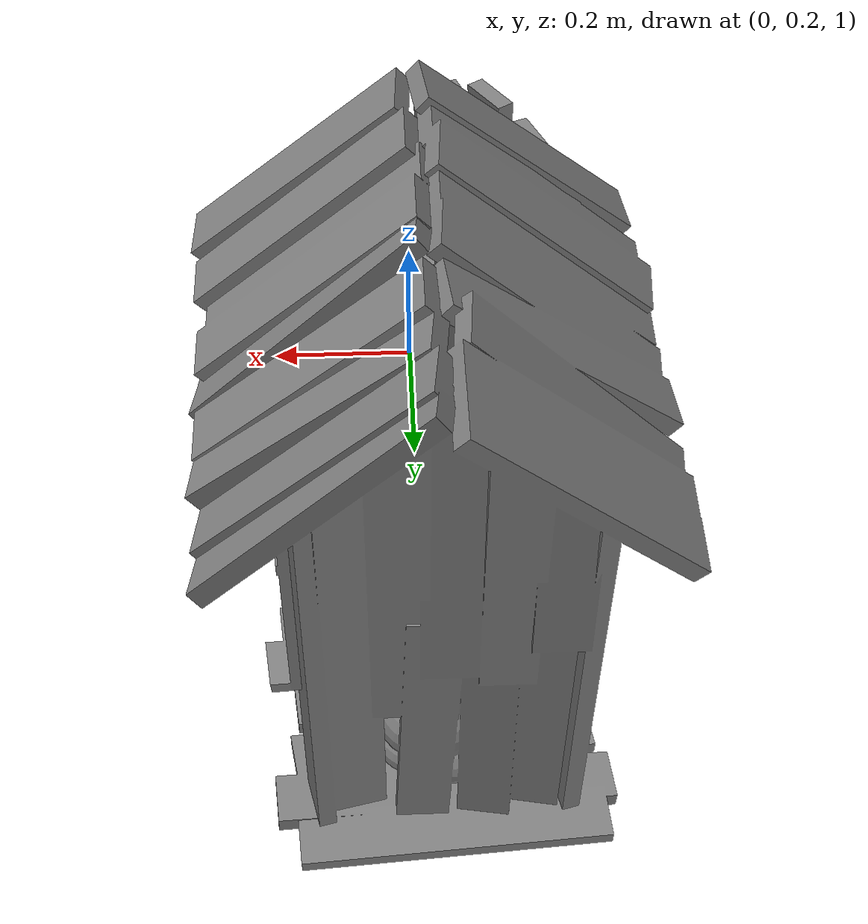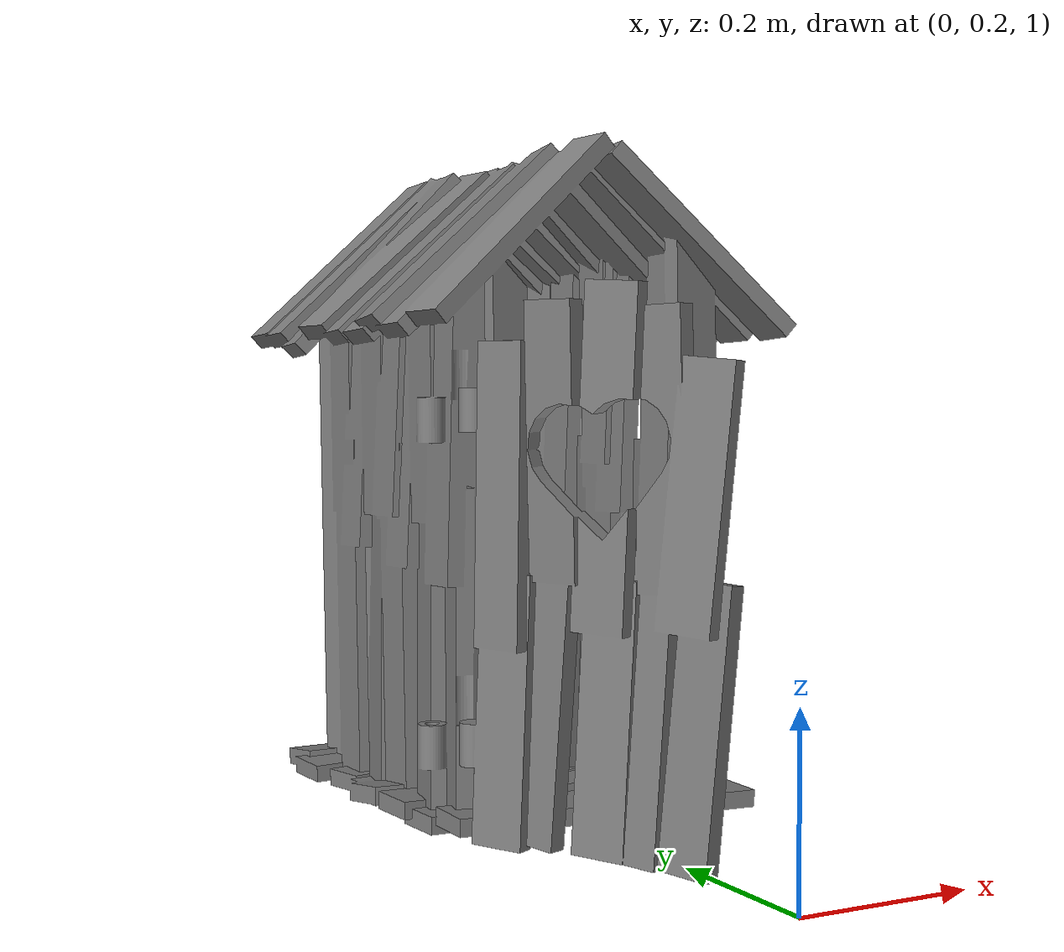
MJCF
<mujoco model="house">
  <asset>
    <mesh name="house_base"       file="house/house_base_o.stl"      scale="0.01 0.01 0.01"/>
    <mesh name="house_door"       file="house/house_door_o.stl"      scale="0.01 0.01 0.01"/>
  </asset>

  <worldbody>
    <body name="torso" pos="0.0 0.8 1.0" euler="0 0 0">
      <geom type="mesh" mesh="house_base"/>
      <body name="house_door_link" pos="-0.02 0.02 0.0">
        <joint axis="0 0 1" name="joint1" pos="-0.1545 -0.2780 0" range="-1.0 1.0" type="hinge"/>
        <geom type="mesh" mesh="house_door"/>
      </body>
    </body>
  </worldbody>

  <actuator>
    <motor gear="200" joint="joint1" name="joint1"/>
  </actuator>

</mujoco>
